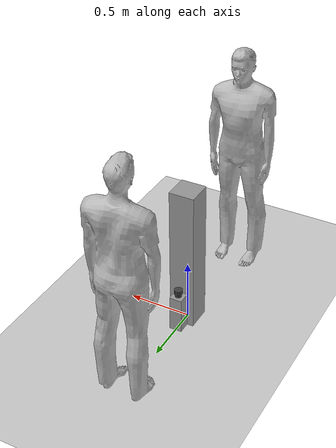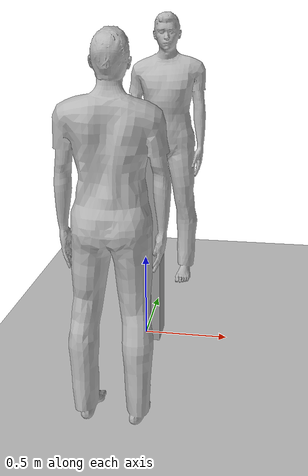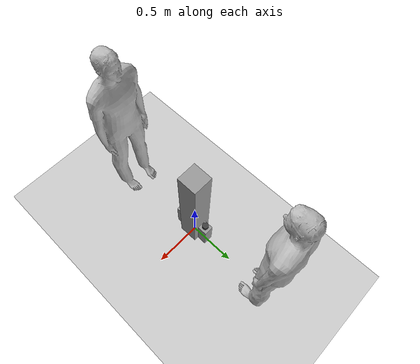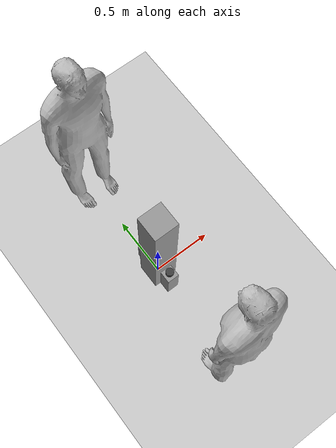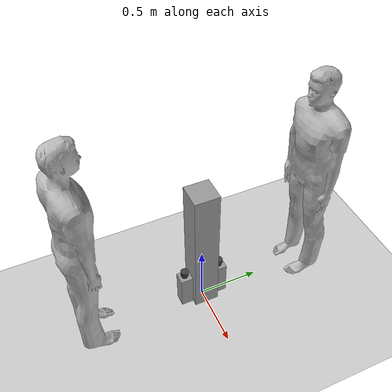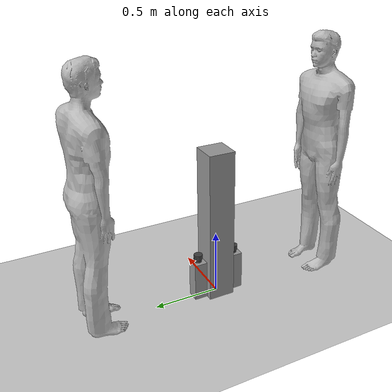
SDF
<sdf version="1.7">
 <world name="default">
  <light name="sun" type="directional">
   <pose>0 0 10 0 -0 0</pose>
   <diffuse>0.8 0.8 0.8 1</diffuse>
   <specular>0.2 0.2 0.2 1</specular>
   <attenuation>
    <range>1000</range>
    <constant>0.9</constant>
    <linear>0.01</linear>
    <quadratic>0.001</quadratic>
   </attenuation>
   <direction>-0.5 0.1 -0.9</direction>
   <spot><inner_angle>0</inner_angle><outer_angle>0</outer_angle><falloff>0</falloff></spot>
  </light>
  <model name="ground_plane">
   <static>1</static>
   <link name="link">
    <collision name="collision">
     <geometry><plane><normal>0 0 1</normal><size>100 100</size></plane></geometry>
     <surface><friction><ode><mu>100</mu><mu2>50</mu2></ode></friction></surface>
    </collision>
    <visual name="visual">
     <cast_shadows>0</cast_shadows>
     <geometry><plane><normal>0 0 1</normal><size>100 100</size></plane></geometry>
     <material>
      <script><uri>file://media/materials/scripts/gazebo.material</uri><name>Gazebo/Grey</name></script>
     </material>
    </visual>
   </link>
  </model>
  <gravity>0 0 -9.8</gravity>
  <magnetic_field>6e-06 2.3e-05 -4.2e-05</magnetic_field>
  <atmosphere type="adiabatic"/>
  <physics type="ode">
   <max_step_size>0.001</max_step_size>
   <real_time_factor>1</real_time_factor>
   <real_time_update_rate>1000</real_time_update_rate>
  </physics>
  <scene><ambient>0.4 0.4 0.4 1</ambient><background>0.7 0.7 0.7 1</background><shadows>1</shadows></scene>
  <spherical_coordinates>
   <surface_model>EARTH_WGS84</surface_model>
   <latitude_deg>0</latitude_deg>
   <longitude_deg>0</longitude_deg>
   <elevation>0</elevation>
   <heading_deg>0</heading_deg>
  </spherical_coordinates>
  <model name="base_2_ur5">
   <link name="link">
    <inertial>
     <mass>1</mass>
     <inertia>
      <ixx>0.166667</ixx>
      <ixy>0</ixy>
      <ixz>0</ixz>
      <iyy>0.166667</iyy>
      <iyz>0</iyz>
      <izz>0.166667</izz>
     </inertia>
    </inertial>
    <visual name="visual">
     <geometry><box><size>0.2 0.2 1.18</size></box></geometry>
     <material>
      <script><name>Gazebo/Grey</name><uri>file://media/materials/scripts/gazebo.material</uri></script>
      <shader type="pixel"><normal_map>__default__</normal_map></shader>
      <ambient>0.3 0.3 0.3 1</ambient>
      <diffuse>0.7 0.7 0.7 1</diffuse>
      <specular>0.01 0.01 0.01 1</specular>
      <emissive>0 0 0 1</emissive>
     </material>
    </visual>
    <collision name="collision">
     <geometry><box><size>0.2 0.2 1.18</size></box></geometry>
     <surface>
      <friction>
       <ode><mu>1</mu><mu2>1</mu2><fdir1>0 0 0</fdir1><slip1>0</slip1><slip2>0</slip2></ode>
       <torsional>
        <coefficient>1</coefficient>
        <patch_radius>0</patch_radius>
        <surface_radius>0</surface_radius>
        <use_patch_radius>1</use_patch_radius>
        <ode><slip>0</slip></ode>
       </torsional>
      </friction>
      <bounce><restitution_coefficient>0</restitution_coefficient><threshold>1e+06</threshold></bounce>
      <contact>
       <collide_without_contact>0</collide_without_contact>
       <collide_without_contact_bitmask>1</collide_without_contact_bitmask>
       <collide_bitmask>1</collide_bitmask>
       <ode>
        <soft_cfm>0</soft_cfm>
        <soft_erp>0.2</soft_erp>
        <kp>1e+13</kp>
        <kd>1</kd>
        <max_vel>0.01</max_vel>
        <min_depth>0</min_depth>
       </ode>
       <bullet>
        <split_impulse>1</split_impulse>
        <split_impulse_penetration_threshold>-0.01</split_impulse_penetration_threshold>
        <soft_cfm>0</soft_cfm>
        <soft_erp>0.2</soft_erp>
        <kp>1e+13</kp>
        <kd>1</kd>
       </bullet>
      </contact>
     </surface>
    </collision>
   </link>
   <static>1</static>
   <pose>-1e-06 0 0.59 -1e-06 -1e-06 -5e-06</pose>
  </model>
  <model name="base_2_lidar">
   <link name="link">
    <inertial>
     <mass>1</mass>
     <inertia>
      <ixx>0.166667</ixx>
      <ixy>0</ixy>
      <ixz>0</ixz>
      <iyy>0.166667</iyy>
      <iyz>0</iyz>
      <izz>0.166667</izz>
     </inertia>
    </inertial>
    <visual name="visual">
     <geometry><box><size>0.1 0.1 0.3</size></box></geometry>
     <material>
      <script><name>Gazebo/Grey</name><uri>file://media/materials/scripts/gazebo.material</uri></script>
      <shader type="pixel"><normal_map>__default__</normal_map></shader>
      <ambient>0.3 0.3 0.3 1</ambient>
      <diffuse>0.7 0.7 0.7 1</diffuse>
      <specular>0.01 0.01 0.01 1</specular>
      <emissive>0 0 0 1</emissive>
     </material>
    </visual>
    <collision name="collision">
     <geometry><box><size>0.1 0.1 0.3</size></box></geometry>
     <surface>
      <friction>
       <ode><mu>1</mu><mu2>1</mu2><fdir1>0 0 0</fdir1><slip1>0</slip1><slip2>0</slip2></ode>
       <torsional>
        <coefficient>1</coefficient>
        <patch_radius>0</patch_radius>
        <surface_radius>0</surface_radius>
        <use_patch_radius>1</use_patch_radius>
        <ode><slip>0</slip></ode>
       </torsional>
      </friction>
      <bounce><restitution_coefficient>0</restitution_coefficient><threshold>1e+06</threshold></bounce>
      <contact>
       <collide_without_contact>0</collide_without_contact>
       <collide_without_contact_bitmask>1</collide_without_contact_bitmask>
       <collide_bitmask>1</collide_bitmask>
       <ode>
        <soft_cfm>0</soft_cfm>
        <soft_erp>0.2</soft_erp>
        <kp>1e+13</kp>
        <kd>1</kd>
        <max_vel>0.01</max_vel>
        <min_depth>0</min_depth>
       </ode>
       <bullet>
        <split_impulse>1</split_impulse>
        <split_impulse_penetration_threshold>-0.01</split_impulse_penetration_threshold>
        <soft_cfm>0</soft_cfm>
        <soft_erp>0.2</soft_erp>
        <kp>1e+13</kp>
        <kd>1</kd>
       </bullet>
      </contact>
     </surface>
    </collision>
   </link>
   <static>1</static>
   <pose>0 -0.15 0.15 0 -0 0</pose>
  </model>
  <model name="base_2_lidar_0">
   <link name="link">
    <inertial>
     <mass>1</mass>
     <inertia>
      <ixx>0.166667</ixx>
      <ixy>0</ixy>
      <ixz>0</ixz>
      <iyy>0.166667</iyy>
      <iyz>0</iyz>
      <izz>0.166667</izz>
     </inertia>
    </inertial>
    <visual name="visual">
     <geometry><box><size>0.1 0.1 0.3</size></box></geometry>
     <material>
      <script><name>Gazebo/Grey</name><uri>file://media/materials/scripts/gazebo.material</uri></script>
      <shader type="pixel"><normal_map>__default__</normal_map></shader>
      <ambient>0.3 0.3 0.3 1</ambient>
      <diffuse>0.7 0.7 0.7 1</diffuse>
      <specular>0.01 0.01 0.01 1</specular>
      <emissive>0 0 0 1</emissive>
     </material>
    </visual>
    <collision name="collision">
     <geometry><box><size>0.1 0.1 0.3</size></box></geometry>
     <surface>
      <friction>
       <ode><mu>1</mu><mu2>1</mu2><fdir1>0 0 0</fdir1><slip1>0</slip1><slip2>0</slip2></ode>
       <torsional>
        <coefficient>1</coefficient>
        <patch_radius>0</patch_radius>
        <surface_radius>0</surface_radius>
        <use_patch_radius>1</use_patch_radius>
        <ode><slip>0</slip></ode>
       </torsional>
      </friction>
      <bounce><restitution_coefficient>0</restitution_coefficient><threshold>1e+06</threshold></bounce>
      <contact>
       <collide_without_contact>0</collide_without_contact>
       <collide_without_contact_bitmask>1</collide_without_contact_bitmask>
       <collide_bitmask>1</collide_bitmask>
       <ode>
        <soft_cfm>0</soft_cfm>
        <soft_erp>0.2</soft_erp>
        <kp>1e+13</kp>
        <kd>1</kd>
        <max_vel>0.01</max_vel>
        <min_depth>0</min_depth>
       </ode>
       <bullet>
        <split_impulse>1</split_impulse>
        <split_impulse_penetration_threshold>-0.01</split_impulse_penetration_threshold>
        <soft_cfm>0</soft_cfm>
        <soft_erp>0.2</soft_erp>
        <kp>1e+13</kp>
        <kd>1</kd>
       </bullet>
      </contact>
     </surface>
    </collision>
   </link>
   <static>1</static>
   <pose>0 0.15 0.15 0 -0 0</pose>
  </model>
  <model name="scanse_sweep">
   <link name="base">
    <pose>0 0 0.0117 0 -0 0</pose>
    <inertial>
     <mass>0.11</mass>
     <inertia>
      <ixx>2.2901e-05</ixx>
      <iyy>2.2901e-05</iyy>
      <izz>3.5764e-05</izz>
      <ixy>0</ixy>
      <ixz>0</ixz>
      <iyz>0</iyz>
     </inertia>
    </inertial>
    <visual name="base_visual">
     <geometry><mesh><uri>model://scanse_sweep/meshes/scanse_bottom.dae</uri></mesh></geometry>
     <material>
      <ambient>0.25 0.25 0.25 1</ambient>
      <diffuse>0.25 0.25 0.25 1</diffuse>
      <specular>0 0 0 0</specular>
      <emissive>0 0 0 0</emissive>
      <shader type="pixel"/>
      <script><name>ModelPreview_4::base::base_visual_MATERIAL_</name><uri>__default__</uri></script>
     </material>
    </visual>
    <collision name="base_collision">
     <geometry><cylinder><radius>0.0255</radius><length>0.0234</length></cylinder></geometry>
     <surface>
      <friction>
       <ode><mu>1</mu><mu2>1</mu2><fdir1>0 0 0</fdir1><slip1>0</slip1><slip2>0</slip2></ode>
       <torsional>
        <coefficient>1</coefficient>
        <patch_radius>0</patch_radius>
        <surface_radius>0</surface_radius>
        <use_patch_radius>1</use_patch_radius>
        <ode><slip>0</slip></ode>
       </torsional>
      </friction>
      <bounce><restitution_coefficient>0</restitution_coefficient><threshold>1e+06</threshold></bounce>
      <contact>
       <collide_without_contact>0</collide_without_contact>
       <collide_without_contact_bitmask>1</collide_without_contact_bitmask>
       <collide_bitmask>1</collide_bitmask>
       <ode>
        <soft_cfm>0</soft_cfm>
        <soft_erp>0.2</soft_erp>
        <kp>1e+13</kp>
        <kd>1</kd>
        <max_vel>0.01</max_vel>
        <min_depth>0</min_depth>
       </ode>
       <bullet>
        <split_impulse>1</split_impulse>
        <split_impulse_penetration_threshold>-0.01</split_impulse_penetration_threshold>
        <soft_cfm>0</soft_cfm>
        <soft_erp>0.2</soft_erp>
        <kp>1e+13</kp>
        <kd>1</kd>
       </bullet>
      </contact>
     </surface>
    </collision>
   </link>
   <link name="top">
    <pose>0 0 0.04265 0 -0 0</pose>
    <inertial>
     <mass>0.01</mass>
     <inertia>
      <ixx>1.1798e-05</ixx>
      <iyy>1.1798e-05</iyy>
      <izz>2.1125e-05</izz>
      <ixy>0</ixy>
      <ixz>0</ixz>
      <iyz>0</iyz>
     </inertia>
    </inertial>
    <sensor name="sensor" type="ray">
     <pose>0 0 -0.00105 0 -0 0</pose>
     <visualize>0</visualize>
     <update_rate>500</update_rate>
     <ray>
      <noise><type>gaussian</type><mean>0</mean><stddev>0.01</stddev></noise>
      <scan>
       <horizontal>
        <samples>360</samples>
        <resolution>1</resolution>
        <min_angle>0</min_angle>
        <max_angle>6.28319</max_angle>
       </horizontal>
       <vertical><samples>1</samples><min_angle>0</min_angle><max_angle>0</max_angle></vertical>
      </scan>
      <range><min>0.05</min><max>3.5</max><resolution>0.015</resolution></range>
     </ray>
     <plugin name="gazebo_ros_lds_lfcd_controller" filename="libgazebo_ros_laser.so">
      <topicName>scan</topicName>
      <frameName>base_scan</frameName>
     </plugin>
    </sensor>
    <visual name="top_visual">
     <geometry><mesh><uri>model://scanse_sweep/meshes/scanse_top.dae</uri></mesh></geometry>
     <material>
      <ambient>0.25 0.25 0.25 1</ambient>
      <diffuse>0.25 0.25 0.25 1</diffuse>
      <specular>0 0 0 0</specular>
      <emissive>0 0 0 0</emissive>
      <shader type="pixel"/>
      <script><name>ModelPreview_4::top::top_visual_MATERIAL_</name><uri>__default__</uri></script>
     </material>
    </visual>
    <collision name="top_collision">
     <geometry><cylinder><radius>0.0325</radius><length>0.0385</length></cylinder></geometry>
     <surface>
      <friction>
       <ode><mu>1</mu><mu2>1</mu2><fdir1>0 0 0</fdir1><slip1>0</slip1><slip2>0</slip2></ode>
       <torsional>
        <coefficient>1</coefficient>
        <patch_radius>0</patch_radius>
        <surface_radius>0</surface_radius>
        <use_patch_radius>1</use_patch_radius>
        <ode><slip>0</slip></ode>
       </torsional>
      </friction>
      <bounce><restitution_coefficient>0</restitution_coefficient><threshold>1e+06</threshold></bounce>
      <contact>
       <collide_without_contact>0</collide_without_contact>
       <collide_without_contact_bitmask>1</collide_without_contact_bitmask>
       <collide_bitmask>1</collide_bitmask>
       <ode>
        <soft_cfm>0</soft_cfm>
        <soft_erp>0.2</soft_erp>
        <kp>1e+13</kp>
        <kd>1</kd>
        <max_vel>0.01</max_vel>
        <min_depth>0</min_depth>
       </ode>
       <bullet>
        <split_impulse>1</split_impulse>
        <split_impulse_penetration_threshold>-0.01</split_impulse_penetration_threshold>
        <soft_cfm>0</soft_cfm>
        <soft_erp>0.2</soft_erp>
        <kp>1e+13</kp>
        <kd>1</kd>
       </bullet>
      </contact>
     </surface>
    </collision>
   </link>
   <joint name="joint" type="revolute">
    <parent>base</parent>
    <child>top</child>
    <pose>0 0 -0.01925 0 -0 0</pose>
    <axis>
     <xyz>0 0 1</xyz>
     <limit><lower>-1e+16</lower><upper>1e+16</upper><effort>-1</effort><velocity>-1</velocity></limit>
     <dynamics>
      <spring_reference>0</spring_reference>
      <spring_stiffness>0</spring_stiffness>
      <damping>0</damping>
      <friction>0</friction>
     </dynamics>
    </axis>
    <physics>
     <ode><limit><cfm>0</cfm><erp>0.2</erp></limit><suspension><cfm>0</cfm><erp>0.2</erp></suspension></ode>
    </physics>
   </joint>
   <static>1</static>
   <pose>0 -0.15 0.301 0 0 -1.5707</pose>
  </model>
  <model name="scanse_sweep_1">
   <link name="base">
    <pose>0 0 0.0117 0 -0 0</pose>
    <inertial>
     <mass>0.11</mass>
     <inertia>
      <ixx>2.2901e-05</ixx>
      <iyy>2.2901e-05</iyy>
      <izz>3.5764e-05</izz>
      <ixy>0</ixy>
      <ixz>0</ixz>
      <iyz>0</iyz>
     </inertia>
    </inertial>
    <visual name="base_visual">
     <geometry><mesh><uri>model://scanse_sweep/meshes/scanse_bottom.dae</uri></mesh></geometry>
     <material>
      <ambient>0.25 0.25 0.25 1</ambient>
      <diffuse>0.25 0.25 0.25 1</diffuse>
      <specular>0 0 0 0</specular>
      <emissive>0 0 0 0</emissive>
      <shader type="pixel"/>
      <script><name>ModelPreview_7::base::base_visual_MATERIAL_</name><uri>__default__</uri></script>
     </material>
    </visual>
    <collision name="base_collision">
     <geometry><cylinder><radius>0.0255</radius><length>0.0234</length></cylinder></geometry>
     <surface>
      <friction>
       <ode><mu>1</mu><mu2>1</mu2><fdir1>0 0 0</fdir1><slip1>0</slip1><slip2>0</slip2></ode>
       <torsional>
        <coefficient>1</coefficient>
        <patch_radius>0</patch_radius>
        <surface_radius>0</surface_radius>
        <use_patch_radius>1</use_patch_radius>
        <ode><slip>0</slip></ode>
       </torsional>
      </friction>
      <bounce><restitution_coefficient>0</restitution_coefficient><threshold>1e+06</threshold></bounce>
      <contact>
       <collide_without_contact>0</collide_without_contact>
       <collide_without_contact_bitmask>1</collide_without_contact_bitmask>
       <collide_bitmask>1</collide_bitmask>
       <ode>
        <soft_cfm>0</soft_cfm>
        <soft_erp>0.2</soft_erp>
        <kp>1e+13</kp>
        <kd>1</kd>
        <max_vel>0.01</max_vel>
        <min_depth>0</min_depth>
       </ode>
       <bullet>
        <split_impulse>1</split_impulse>
        <split_impulse_penetration_threshold>-0.01</split_impulse_penetration_threshold>
        <soft_cfm>0</soft_cfm>
        <soft_erp>0.2</soft_erp>
        <kp>1e+13</kp>
        <kd>1</kd>
       </bullet>
      </contact>
     </surface>
    </collision>
   </link>
   <link name="top">
    <pose>0 0 0.04265 0 -0 0</pose>
    <inertial>
     <mass>0.01</mass>
     <inertia>
      <ixx>1.1798e-05</ixx>
      <iyy>1.1798e-05</iyy>
      <izz>2.1125e-05</izz>
      <ixy>0</ixy>
      <ixz>0</ixz>
      <iyz>0</iyz>
     </inertia>
    </inertial>
    <sensor name="sensor" type="ray">
     <pose>0 0 -0.00105 0 -0 0</pose>
     <visualize>0</visualize>
     <update_rate>500</update_rate>
     <ray>
      <noise><type>gaussian</type><mean>0</mean><stddev>0.01</stddev></noise>
      <scan>
       <horizontal>
        <samples>360</samples>
        <resolution>1</resolution>
        <min_angle>0</min_angle>
        <max_angle>6.28319</max_angle>
       </horizontal>
       <vertical><samples>1</samples><min_angle>0</min_angle><max_angle>0</max_angle></vertical>
      </scan>
      <range><min>0.05</min><max>3.5</max><resolution>0.015</resolution></range>
     </ray>
     <plugin name="gazebo_ros_lds_lfcd_controller" filename="libgazebo_ros_laser.so">
      <topicName>scan2</topicName>
      <frameName>base_scan_2</frameName>
     </plugin>
    </sensor>
    <visual name="top_visual">
     <geometry><mesh><uri>model://scanse_sweep/meshes/scanse_top.dae</uri></mesh></geometry>
     <material>
      <ambient>0.25 0.25 0.25 1</ambient>
      <diffuse>0.25 0.25 0.25 1</diffuse>
      <specular>0 0 0 0</specular>
      <emissive>0 0 0 0</emissive>
      <shader type="pixel"/>
      <script><name>ModelPreview_7::top::top_visual_MATERIAL_</name><uri>__default__</uri></script>
     </material>
    </visual>
    <collision name="top_collision">
     <geometry><cylinder><radius>0.0325</radius><length>0.0385</length></cylinder></geometry>
     <surface>
      <friction>
       <ode><mu>1</mu><mu2>1</mu2><fdir1>0 0 0</fdir1><slip1>0</slip1><slip2>0</slip2></ode>
       <torsional>
        <coefficient>1</coefficient>
        <patch_radius>0</patch_radius>
        <surface_radius>0</surface_radius>
        <use_patch_radius>1</use_patch_radius>
        <ode><slip>0</slip></ode>
       </torsional>
      </friction>
      <bounce><restitution_coefficient>0</restitution_coefficient><threshold>1e+06</threshold></bounce>
      <contact>
       <collide_without_contact>0</collide_without_contact>
       <collide_without_contact_bitmask>1</collide_without_contact_bitmask>
       <collide_bitmask>1</collide_bitmask>
       <ode>
        <soft_cfm>0</soft_cfm>
        <soft_erp>0.2</soft_erp>
        <kp>1e+13</kp>
        <kd>1</kd>
        <max_vel>0.01</max_vel>
        <min_depth>0</min_depth>
       </ode>
       <bullet>
        <split_impulse>1</split_impulse>
        <split_impulse_penetration_threshold>-0.01</split_impulse_penetration_threshold>
        <soft_cfm>0</soft_cfm>
        <soft_erp>0.2</soft_erp>
        <kp>1e+13</kp>
        <kd>1</kd>
       </bullet>
      </contact>
     </surface>
    </collision>
   </link>
   <joint name="joint" type="revolute">
    <parent>base</parent>
    <child>top</child>
    <pose>0 0 -0.01925 0 -0 0</pose>
    <axis>
     <xyz>0 0 1</xyz>
     <limit><lower>-1e+16</lower><upper>1e+16</upper><effort>-1</effort><velocity>-1</velocity></limit>
     <dynamics>
      <spring_reference>0</spring_reference>
      <spring_stiffness>0</spring_stiffness>
      <damping>0</damping>
      <friction>0</friction>
     </dynamics>
    </axis>
    <physics>
     <ode><limit><cfm>0</cfm><erp>0.2</erp></limit><suspension><cfm>0</cfm><erp>0.2</erp></suspension></ode>
    </physics>
   </joint>
   <static>1</static>
   <pose>0 0.15 0.301 0 -0 1.5707</pose>
  </model>
  <model name="person_standing">
   <link name="link">
    <inertial>
     <pose>0 -0.1 0.95 0 -0 0</pose>
     <mass>80</mass>
     <inertia><ixx>24.88</ixx><ixy>0</ixy><ixz>0</ixz><iyy>25.73</iyy><iyz>0</iyz><izz>2.48</izz></inertia>
    </inertial>
    <collision name="bottom">
     <pose>0 -0.1 0.01 0 -0 0</pose>
     <geometry><box><size>0.5 0.35 0.02</size></box></geometry>
    </collision>
    <collision name="person">
     <pose>0 0 0.02 0.04 -0 0</pose>
     <geometry><mesh><uri>model://person_standing/meshes/standing.dae</uri></mesh></geometry>
    </collision>
    <visual name="visual">
     <pose>0 0 0.02 0.04 -0 0</pose>
     <geometry><mesh><uri>model://person_standing/meshes/standing.dae</uri></mesh></geometry>
    </visual>
   </link>
   <pose>0 -1 0 0 -0 3.1415</pose>
  </model>
  <model name="person_standing_0">
   <link name="link">
    <inertial>
     <pose>0 -0.1 0.95 0 -0 0</pose>
     <mass>80</mass>
     <inertia><ixx>24.88</ixx><ixy>0</ixy><ixz>0</ixz><iyy>25.73</iyy><iyz>0</iyz><izz>2.48</izz></inertia>
    </inertial>
    <collision name="bottom">
     <pose>0 -0.1 0.01 0 -0 0</pose>
     <geometry><box><size>0.5 0.35 0.02</size></box></geometry>
    </collision>
    <collision name="person">
     <pose>0 0 0.02 0.04 -0 0</pose>
     <geometry><mesh><uri>model://person_standing/meshes/standing.dae</uri></mesh></geometry>
    </collision>
    <visual name="visual">
     <pose>0 0 0.02 0.04 -0 0</pose>
     <geometry><mesh><uri>model://person_standing/meshes/standing.dae</uri></mesh></geometry>
    </visual>
   </link>
   <pose>0 1 0 0 0 0</pose>
  </model>
 </world>
</sdf>
